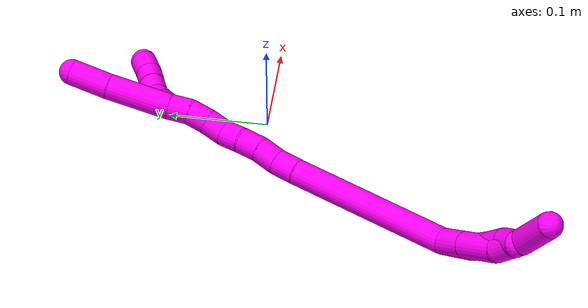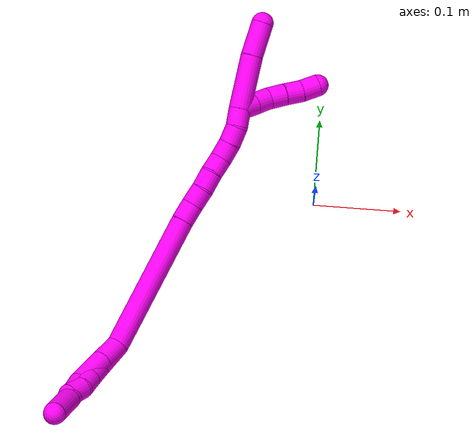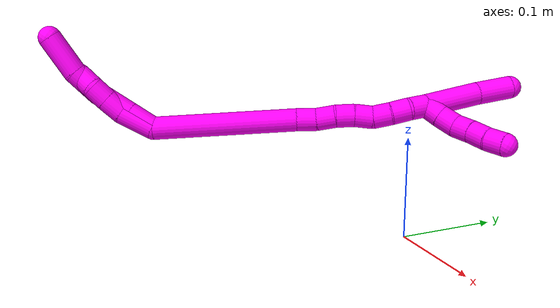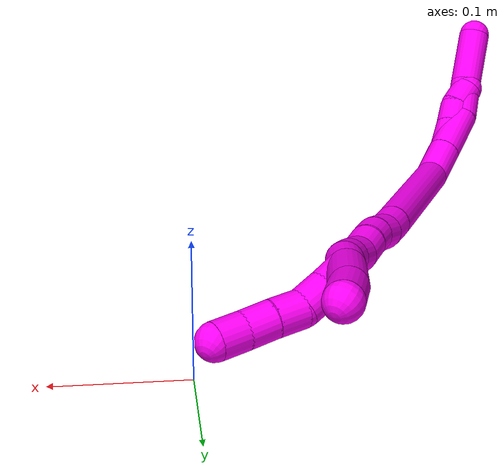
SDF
<sdf version="1.7">
 <world name="default">
  <model name="10">
   <static>0</static>
   <link name="10">
    <collision name="collision-cylinder-e_1_2_8">
     <pose>0.000612 0.000194 0.015052 -0.012898 0.040608 -0.000262</pose>
     <geometry><cylinder><radius>0.0125</radius><length>0.030132</length></cylinder></geometry>
     <surface>
      <friction><ode><mu>1.16</mu><mu2>1.16</mu2><slip1>0</slip1><slip2>0</slip2></ode></friction>
      <contact><ode><kp>1e+06</kp><kd>1</kd><max_vel>0</max_vel><min_depth>0.001</min_depth></ode></contact>
     </surface>
    </collision>
    <visual name="visual-cylinder-e_1_2_8">
     <pose>0.000612 0.000194 0.015052 -0.012898 0.040608 -0.000262</pose>
     <geometry><cylinder><radius>0.0125</radius><length>0.030132</length></cylinder></geometry>
     <material><ambient>1 0 0.964706 1</ambient></material>
    </visual>
    <collision name="collision-cylinder-e_2_8_9">
     <pose>0.002144 0.000601 0.050875 -0.01025 0.04428 -0.000227</pose>
     <geometry><cylinder><radius>0.0125</radius><length>0.041584</length></cylinder></geometry>
     <surface>
      <friction><ode><mu>1.16</mu><mu2>1.16</mu2><slip1>0</slip1><slip2>0</slip2></ode></friction>
      <contact><ode><kp>1e+06</kp><kd>1</kd><max_vel>0</max_vel><min_depth>0.001</min_depth></ode></contact>
     </surface>
    </collision>
    <visual name="visual-cylinder-e_2_8_9">
     <pose>0.002144 0.000601 0.050875 -0.01025 0.04428 -0.000227</pose>
     <geometry><cylinder><radius>0.0125</radius><length>0.041584</length></cylinder></geometry>
     <material><ambient>1 0 0.964706 1</ambient></material>
    </visual>
    <collision name="collision-cylinder-e_3_9_10">
     <pose>0.00857 0.003198 0.087179 -0.152307 0.336991 -0.025957</pose>
     <geometry><cylinder><radius>0.0125</radius><length>0.033305</length></cylinder></geometry>
     <surface>
      <friction><ode><mu>1.16</mu><mu2>1.16</mu2><slip1>0</slip1><slip2>0</slip2></ode></friction>
      <contact><ode><kp>1e+06</kp><kd>1</kd><max_vel>0</max_vel><min_depth>0.001</min_depth></ode></contact>
     </surface>
    </collision>
    <visual name="visual-cylinder-e_3_9_10">
     <pose>0.00857 0.003198 0.087179 -0.152307 0.336991 -0.025957</pose>
     <geometry><cylinder><radius>0.0125</radius><length>0.033305</length></cylinder></geometry>
     <material><ambient>1 0 0.964706 1</ambient></material>
    </visual>
    <collision name="collision-cylinder-e_4_10_6">
     <pose>0.021646 0.013328 0.122423 -0.374392 0.343306 -0.06565</pose>
     <geometry><cylinder><radius>0.0125</radius><length>0.04498</length></cylinder></geometry>
     <surface>
      <friction><ode><mu>1.16</mu><mu2>1.16</mu2><slip1>0</slip1><slip2>0</slip2></ode></friction>
      <contact><ode><kp>1e+06</kp><kd>1</kd><max_vel>0</max_vel><min_depth>0.001</min_depth></ode></contact>
     </surface>
    </collision>
    <visual name="visual-cylinder-e_4_10_6">
     <pose>0.021646 0.013328 0.122423 -0.374392 0.343306 -0.06565</pose>
     <geometry><cylinder><radius>0.0125</radius><length>0.04498</length></cylinder></geometry>
     <material><ambient>1 0 0.964706 1</ambient></material>
    </visual>
    <collision name="collision-cylinder-e_1_2_11">
     <pose>0.000848 -0.001673 0.01886 0.088494 0.044745 0.001981</pose>
     <geometry><cylinder><radius>0.0125</radius><length>0.037906</length></cylinder></geometry>
     <surface>
      <friction><ode><mu>1.16</mu><mu2>1.16</mu2><slip1>0</slip1><slip2>0</slip2></ode></friction>
      <contact><ode><kp>1e+06</kp><kd>1</kd><max_vel>0</max_vel><min_depth>0.001</min_depth></ode></contact>
     </surface>
    </collision>
    <visual name="visual-cylinder-e_1_2_11">
     <pose>0.000848 -0.001673 0.01886 0.088494 0.044745 0.001981</pose>
     <geometry><cylinder><radius>0.0125</radius><length>0.037906</length></cylinder></geometry>
     <material><ambient>1 0 0.964706 1</ambient></material>
    </visual>
    <collision name="collision-cylinder-e_2_11_12">
     <pose>0.004064 -0.002182 0.048284 -0.109798 0.219244 -0.012097</pose>
     <geometry><cylinder><radius>0.0125</radius><length>0.021776</length></cylinder></geometry>
     <surface>
      <friction><ode><mu>1.16</mu><mu2>1.16</mu2><slip1>0</slip1><slip2>0</slip2></ode></friction>
      <contact><ode><kp>1e+06</kp><kd>1</kd><max_vel>0</max_vel><min_depth>0.001</min_depth></ode></contact>
     </surface>
    </collision>
    <visual name="visual-cylinder-e_2_11_12">
     <pose>0.004064 -0.002182 0.048284 -0.109798 0.219244 -0.012097</pose>
     <geometry><cylinder><radius>0.0125</radius><length>0.021776</length></cylinder></geometry>
     <material><ambient>1 0 0.964706 1</ambient></material>
    </visual>
    <collision name="collision-cylinder-e_3_12_13">
     <pose>0.009138 0.000486 0.068378 -0.156508 0.27343 -0.021575</pose>
     <geometry><cylinder><radius>0.0125</radius><length>0.020041</length></cylinder></geometry>
     <surface>
      <friction><ode><mu>1.16</mu><mu2>1.16</mu2><slip1>0</slip1><slip2>0</slip2></ode></friction>
      <contact><ode><kp>1e+06</kp><kd>1</kd><max_vel>0</max_vel><min_depth>0.001</min_depth></ode></contact>
     </surface>
    </collision>
    <visual name="visual-cylinder-e_3_12_13">
     <pose>0.009138 0.000486 0.068378 -0.156508 0.27343 -0.021575</pose>
     <geometry><cylinder><radius>0.0125</radius><length>0.020041</length></cylinder></geometry>
     <material><ambient>1 0 0.964706 1</ambient></material>
    </visual>
    <collision name="collision-cylinder-e_4_13_5">
     <pose>0.011345 0.004101 0.087811 -0.210034 -0.04921 0.005188</pose>
     <geometry><cylinder><radius>0.0125</radius><length>0.020276</length></cylinder></geometry>
     <surface>
      <friction><ode><mu>1.16</mu><mu2>1.16</mu2><slip1>0</slip1><slip2>0</slip2></ode></friction>
      <contact><ode><kp>1e+06</kp><kd>1</kd><max_vel>0</max_vel><min_depth>0.001</min_depth></ode></contact>
     </surface>
    </collision>
    <visual name="visual-cylinder-e_4_13_5">
     <pose>0.011345 0.004101 0.087811 -0.210034 -0.04921 0.005188</pose>
     <geometry><cylinder><radius>0.0125</radius><length>0.020276</length></cylinder></geometry>
     <material><ambient>1 0 0.964706 1</ambient></material>
    </visual>
    <collision name="collision-cylinder-e_1_2_14">
     <pose>0.004957 0.044058 -0.064333 -2.54111 0.063484 -0.204407</pose>
     <geometry><cylinder><radius>0.0125</radius><length>0.156262</length></cylinder></geometry>
     <surface>
      <friction><ode><mu>1.16</mu><mu2>1.16</mu2><slip1>0</slip1><slip2>0</slip2></ode></friction>
      <contact><ode><kp>1e+06</kp><kd>1</kd><max_vel>0</max_vel><min_depth>0.001</min_depth></ode></contact>
     </surface>
    </collision>
    <visual name="visual-cylinder-e_1_2_14">
     <pose>0.004957 0.044058 -0.064333 -2.54111 0.063484 -0.204407</pose>
     <geometry><cylinder><radius>0.0125</radius><length>0.156262</length></cylinder></geometry>
     <material><ambient>1 0 0.964706 1</ambient></material>
    </visual>
    <collision name="collision-cylinder-e_2_14_15">
     <pose>0.01103 0.093785 -0.137993 -2.59551 0.10191 -0.360285</pose>
     <geometry><cylinder><radius>0.0125</radius><length>0.021942</length></cylinder></geometry>
     <surface>
      <friction><ode><mu>1.16</mu><mu2>1.16</mu2><slip1>0</slip1><slip2>0</slip2></ode></friction>
      <contact><ode><kp>1e+06</kp><kd>1</kd><max_vel>0</max_vel><min_depth>0.001</min_depth></ode></contact>
     </surface>
    </collision>
    <visual name="visual-cylinder-e_2_14_15">
     <pose>0.01103 0.093785 -0.137993 -2.59551 0.10191 -0.360285</pose>
     <geometry><cylinder><radius>0.0125</radius><length>0.021942</length></cylinder></geometry>
     <material><ambient>1 0 0.964706 1</ambient></material>
    </visual>
    <collision name="collision-cylinder-e_3_15_16">
     <pose>0.014554 0.105781 -0.155295 -2.4708 0.232229 -0.645832</pose>
     <geometry><cylinder><radius>0.0125</radius><length>0.020923</length></cylinder></geometry>
     <surface>
      <friction><ode><mu>1.16</mu><mu2>1.16</mu2><slip1>0</slip1><slip2>0</slip2></ode></friction>
      <contact><ode><kp>1e+06</kp><kd>1</kd><max_vel>0</max_vel><min_depth>0.001</min_depth></ode></contact>
     </surface>
    </collision>
    <visual name="visual-cylinder-e_3_15_16">
     <pose>0.014554 0.105781 -0.155295 -2.4708 0.232229 -0.645832</pose>
     <geometry><cylinder><radius>0.0125</radius><length>0.020923</length></cylinder></geometry>
     <material><ambient>1 0 0.964706 1</ambient></material>
    </visual>
    <collision name="collision-cylinder-e_4_16_17">
     <pose>0.017755 0.117662 -0.171668 -2.55737 0.078662 -0.260242</pose>
     <geometry><cylinder><radius>0.0125</radius><length>0.020197</length></cylinder></geometry>
     <surface>
      <friction><ode><mu>1.16</mu><mu2>1.16</mu2><slip1>0</slip1><slip2>0</slip2></ode></friction>
      <contact><ode><kp>1e+06</kp><kd>1</kd><max_vel>0</max_vel><min_depth>0.001</min_depth></ode></contact>
     </surface>
    </collision>
    <visual name="visual-cylinder-e_4_16_17">
     <pose>0.017755 0.117662 -0.171668 -2.55737 0.078662 -0.260242</pose>
     <geometry><cylinder><radius>0.0125</radius><length>0.020197</length></cylinder></geometry>
     <material><ambient>1 0 0.964706 1</ambient></material>
    </visual>
    <collision name="collision-cylinder-e_5_17_18">
     <pose>0.019108 0.127364 -0.189194 -2.71504 0.055783 -0.256227</pose>
     <geometry><cylinder><radius>0.0125</radius><length>0.020086</length></cylinder></geometry>
     <surface>
      <friction><ode><mu>1.16</mu><mu2>1.16</mu2><slip1>0</slip1><slip2>0</slip2></ode></friction>
      <contact><ode><kp>1e+06</kp><kd>1</kd><max_vel>0</max_vel><min_depth>0.001</min_depth></ode></contact>
     </surface>
    </collision>
    <visual name="visual-cylinder-e_5_17_18">
     <pose>0.019108 0.127364 -0.189194 -2.71504 0.055783 -0.256227</pose>
     <geometry><cylinder><radius>0.0125</radius><length>0.020086</length></cylinder></geometry>
     <material><ambient>1 0 0.964706 1</ambient></material>
    </visual>
    <collision name="collision-cylinder-e_6_18_19">
     <pose>0.021658 0.137971 -0.205755 -2.42617 0.199437 -0.523062</pose>
     <geometry><cylinder><radius>0.0125</radius><length>0.020089</length></cylinder></geometry>
     <surface>
      <friction><ode><mu>1.16</mu><mu2>1.16</mu2><slip1>0</slip1><slip2>0</slip2></ode></friction>
      <contact><ode><kp>1e+06</kp><kd>1</kd><max_vel>0</max_vel><min_depth>0.001</min_depth></ode></contact>
     </surface>
    </collision>
    <visual name="visual-cylinder-e_6_18_19">
     <pose>0.021658 0.137971 -0.205755 -2.42617 0.199437 -0.523062</pose>
     <geometry><cylinder><radius>0.0125</radius><length>0.020089</length></cylinder></geometry>
     <material><ambient>1 0 0.964706 1</ambient></material>
    </visual>
    <collision name="collision-cylinder-e_7_19_20">
     <pose>0.024567 0.151555 -0.220225 -2.34997 0.091426 -0.218077</pose>
     <geometry><cylinder><radius>0.0125</radius><length>0.020116</length></cylinder></geometry>
     <surface>
      <friction><ode><mu>1.16</mu><mu2>1.16</mu2><slip1>0</slip1><slip2>0</slip2></ode></friction>
      <contact><ode><kp>1e+06</kp><kd>1</kd><max_vel>0</max_vel><min_depth>0.001</min_depth></ode></contact>
     </surface>
    </collision>
    <visual name="visual-cylinder-e_7_19_20">
     <pose>0.024567 0.151555 -0.220225 -2.34997 0.091426 -0.218077</pose>
     <geometry><cylinder><radius>0.0125</radius><length>0.020116</length></cylinder></geometry>
     <material><ambient>1 0 0.964706 1</ambient></material>
    </visual>
    <collision name="collision-cylinder-e_8_20_1">
     <pose>0.023717 0.165832 -0.234307 -2.34869 -0.174378 0.4117</pose>
     <geometry><cylinder><radius>0.0125</radius><length>0.020384</length></cylinder></geometry>
     <surface>
      <friction><ode><mu>1.16</mu><mu2>1.16</mu2><slip1>0</slip1><slip2>0</slip2></ode></friction>
      <contact><ode><kp>1e+06</kp><kd>1</kd><max_vel>0</max_vel><min_depth>0.001</min_depth></ode></contact>
     </surface>
    </collision>
    <visual name="visual-cylinder-e_8_20_1">
     <pose>0.023717 0.165832 -0.234307 -2.34869 -0.174378 0.4117</pose>
     <geometry><cylinder><radius>0.0125</radius><length>0.020384</length></cylinder></geometry>
     <material><ambient>1 0 0.964706 1</ambient></material>
    </visual>
    <collision name="collision-cylinder-e_1_1_21">
     <pose>0.024466 0.171047 -0.250833 2.94027 0.254492 1.80503</pose>
     <geometry><cylinder><radius>0.0125</radius><length>0.02</length></cylinder></geometry>
     <surface>
      <friction><ode><mu>1.16</mu><mu2>1.16</mu2><slip1>0</slip1><slip2>0</slip2></ode></friction>
      <contact><ode><kp>1e+06</kp><kd>1</kd><max_vel>0</max_vel><min_depth>0.001</min_depth></ode></contact>
     </surface>
    </collision>
    <visual name="visual-cylinder-e_1_1_21">
     <pose>0.024466 0.171047 -0.250833 2.94027 0.254492 1.80503</pose>
     <geometry><cylinder><radius>0.0125</radius><length>0.02</length></cylinder></geometry>
     <material><ambient>1 0 0.964706 1</ambient></material>
    </visual>
    <collision name="collision-cylinder-e_2_21_22">
     <pose>0.029753 0.167765 -0.269829 3.00094 0.280653 2.21639</pose>
     <geometry><cylinder><radius>0.0125</radius><length>0.02</length></cylinder></geometry>
     <surface>
      <friction><ode><mu>1.16</mu><mu2>1.16</mu2><slip1>0</slip1><slip2>0</slip2></ode></friction>
      <contact><ode><kp>1e+06</kp><kd>1</kd><max_vel>0</max_vel><min_depth>0.001</min_depth></ode></contact>
     </surface>
    </collision>
    <visual name="visual-cylinder-e_2_21_22">
     <pose>0.029753 0.167765 -0.269829 3.00094 0.280653 2.21639</pose>
     <geometry><cylinder><radius>0.0125</radius><length>0.02</length></cylinder></geometry>
     <material><ambient>1 0 0.964706 1</ambient></material>
    </visual>
    <collision name="collision-cylinder-e_3_22_23">
     <pose>0.038351 0.165836 -0.287449 3.06994 0.622148 2.91955</pose>
     <geometry><cylinder><radius>0.0125</radius><length>0.02</length></cylinder></geometry>
     <surface>
      <friction><ode><mu>1.16</mu><mu2>1.16</mu2><slip1>0</slip1><slip2>0</slip2></ode></friction>
      <contact><ode><kp>1e+06</kp><kd>1</kd><max_vel>0</max_vel><min_depth>0.001</min_depth></ode></contact>
     </surface>
    </collision>
    <visual name="visual-cylinder-e_3_22_23">
     <pose>0.038351 0.165836 -0.287449 3.06994 0.622148 2.91955</pose>
     <geometry><cylinder><radius>0.0125</radius><length>0.02</length></cylinder></geometry>
     <material><ambient>1 0 0.964706 1</ambient></material>
    </visual>
    <collision name="collision-cylinder-e_4_23_24">
     <pose>0.049781 0.164087 -0.303755 3.00015 0.594711 2.68725</pose>
     <geometry><cylinder><radius>0.0125</radius><length>0.02</length></cylinder></geometry>
     <surface>
      <friction><ode><mu>1.16</mu><mu2>1.16</mu2><slip1>0</slip1><slip2>0</slip2></ode></friction>
      <contact><ode><kp>1e+06</kp><kd>1</kd><max_vel>0</max_vel><min_depth>0.001</min_depth></ode></contact>
     </surface>
    </collision>
    <visual name="visual-cylinder-e_4_23_24">
     <pose>0.049781 0.164087 -0.303755 3.00015 0.594711 2.68725</pose>
     <geometry><cylinder><radius>0.0125</radius><length>0.02</length></cylinder></geometry>
     <material><ambient>1 0 0.964706 1</ambient></material>
    </visual>
    <collision name="collision-cylinder-e_5_24_4">
     <pose>0.060819 0.163146 -0.320346 -3.11457 0.574577 -3.05021</pose>
     <geometry><cylinder><radius>0.0125</radius><length>0.02</length></cylinder></geometry>
     <surface>
      <friction><ode><mu>1.16</mu><mu2>1.16</mu2><slip1>0</slip1><slip2>0</slip2></ode></friction>
      <contact><ode><kp>1e+06</kp><kd>1</kd><max_vel>0</max_vel><min_depth>0.001</min_depth></ode></contact>
     </surface>
    </collision>
    <visual name="visual-cylinder-e_5_24_4">
     <pose>0.060819 0.163146 -0.320346 -3.11457 0.574577 -3.05021</pose>
     <geometry><cylinder><radius>0.0125</radius><length>0.02</length></cylinder></geometry>
     <material><ambient>1 0 0.964706 1</ambient></material>
    </visual>
    <collision name="collision-cylinder-e_1_1_25">
     <pose>0.018886 0.195211 -0.26213 -2.3225 -0.100318 0.230267</pose>
     <geometry><cylinder><radius>0.0125</radius><length>0.061165</length></cylinder></geometry>
     <surface>
      <friction><ode><mu>1.16</mu><mu2>1.16</mu2><slip1>0</slip1><slip2>0</slip2></ode></friction>
      <contact><ode><kp>1e+06</kp><kd>1</kd><max_vel>0</max_vel><min_depth>0.001</min_depth></ode></contact>
     </surface>
    </collision>
    <visual name="visual-cylinder-e_1_1_25">
     <pose>0.018886 0.195211 -0.26213 -2.3225 -0.100318 0.230267</pose>
     <geometry><cylinder><radius>0.0125</radius><length>0.061165</length></cylinder></geometry>
     <material><ambient>1 0 0.964706 1</ambient></material>
    </visual>
    <collision name="collision-cylinder-e_2_25_3">
     <pose>0.015171 0.230766 -0.297017 -2.3847 -0.033549 0.084335</pose>
     <geometry><cylinder><radius>0.0125</radius><length>0.038835</length></cylinder></geometry>
     <surface>
      <friction><ode><mu>1.16</mu><mu2>1.16</mu2><slip1>0</slip1><slip2>0</slip2></ode></friction>
      <contact><ode><kp>1e+06</kp><kd>1</kd><max_vel>0</max_vel><min_depth>0.001</min_depth></ode></contact>
     </surface>
    </collision>
    <visual name="visual-cylinder-e_2_25_3">
     <pose>0.015171 0.230766 -0.297017 -2.3847 -0.033549 0.084335</pose>
     <geometry><cylinder><radius>0.0125</radius><length>0.038835</length></cylinder></geometry>
     <material><ambient>1 0 0.964706 1</ambient></material>
    </visual>
    <collision name="collision-sphere-3">
     <pose>0.01452 0.244092 -0.311125 0 -0 0</pose>
     <geometry><sphere><radius>0.0125</radius></sphere></geometry>
     <surface>
      <friction><ode><mu>1.16</mu><mu2>1.16</mu2><slip1>0</slip1><slip2>0</slip2></ode></friction>
      <contact><ode><kp>1e+06</kp><kd>1</kd><max_vel>0</max_vel><min_depth>0.001</min_depth></ode></contact>
     </surface>
    </collision>
    <visual name="visual-sphere-3">
     <pose>0.01452 0.244092 -0.311125 0 -0 0</pose>
     <geometry><sphere><radius>0.0125</radius></sphere></geometry>
     <material><ambient>1 0 0.964706 1</ambient></material>
    </visual>
    <collision name="collision-sphere-25">
     <pose>0.015823 0.217441 -0.282909 0 -0 0</pose>
     <geometry><sphere><radius>0.0125</radius></sphere></geometry>
     <surface>
      <friction><ode><mu>1.16</mu><mu2>1.16</mu2><slip1>0</slip1><slip2>0</slip2></ode></friction>
      <contact><ode><kp>1e+06</kp><kd>1</kd><max_vel>0</max_vel><min_depth>0.001</min_depth></ode></contact>
     </surface>
    </collision>
    <visual name="visual-sphere-25">
     <pose>0.015823 0.217441 -0.282909 0 -0 0</pose>
     <geometry><sphere><radius>0.0125</radius></sphere></geometry>
     <material><ambient>1 0 0.964706 1</ambient></material>
    </visual>
    <collision name="collision-sphere-4">
     <pose>0.066254 0.163373 -0.328737 0 -0 0</pose>
     <geometry><sphere><radius>0.0125</radius></sphere></geometry>
     <surface>
      <friction><ode><mu>1.16</mu><mu2>1.16</mu2><slip1>0</slip1><slip2>0</slip2></ode></friction>
      <contact><ode><kp>1e+06</kp><kd>1</kd><max_vel>0</max_vel><min_depth>0.001</min_depth></ode></contact>
     </surface>
    </collision>
    <visual name="visual-sphere-4">
     <pose>0.066254 0.163373 -0.328737 0 -0 0</pose>
     <geometry><sphere><radius>0.0125</radius></sphere></geometry>
     <material><ambient>1 0 0.964706 1</ambient></material>
    </visual>
    <collision name="collision-sphere-24">
     <pose>0.055384 0.162919 -0.311955 0 -0 0</pose>
     <geometry><sphere><radius>0.0125</radius></sphere></geometry>
     <surface>
      <friction><ode><mu>1.16</mu><mu2>1.16</mu2><slip1>0</slip1><slip2>0</slip2></ode></friction>
      <contact><ode><kp>1e+06</kp><kd>1</kd><max_vel>0</max_vel><min_depth>0.001</min_depth></ode></contact>
     </surface>
    </collision>
    <visual name="visual-sphere-24">
     <pose>0.055384 0.162919 -0.311955 0 -0 0</pose>
     <geometry><sphere><radius>0.0125</radius></sphere></geometry>
     <material><ambient>1 0 0.964706 1</ambient></material>
    </visual>
    <collision name="collision-sphere-23">
     <pose>0.044179 0.165254 -0.295554 0 -0 0</pose>
     <geometry><sphere><radius>0.0125</radius></sphere></geometry>
     <surface>
      <friction><ode><mu>1.16</mu><mu2>1.16</mu2><slip1>0</slip1><slip2>0</slip2></ode></friction>
      <contact><ode><kp>1e+06</kp><kd>1</kd><max_vel>0</max_vel><min_depth>0.001</min_depth></ode></contact>
     </surface>
    </collision>
    <visual name="visual-sphere-23">
     <pose>0.044179 0.165254 -0.295554 0 -0 0</pose>
     <geometry><sphere><radius>0.0125</radius></sphere></geometry>
     <material><ambient>1 0 0.964706 1</ambient></material>
    </visual>
    <collision name="collision-sphere-22">
     <pose>0.032523 0.166418 -0.279343 0 -0 0</pose>
     <geometry><sphere><radius>0.0125</radius></sphere></geometry>
     <surface>
      <friction><ode><mu>1.16</mu><mu2>1.16</mu2><slip1>0</slip1><slip2>0</slip2></ode></friction>
      <contact><ode><kp>1e+06</kp><kd>1</kd><max_vel>0</max_vel><min_depth>0.001</min_depth></ode></contact>
     </surface>
    </collision>
    <visual name="visual-sphere-22">
     <pose>0.032523 0.166418 -0.279343 0 -0 0</pose>
     <geometry><sphere><radius>0.0125</radius></sphere></geometry>
     <material><ambient>1 0 0.964706 1</ambient></material>
    </visual>
    <collision name="collision-sphere-21">
     <pose>0.026983 0.169112 -0.260316 0 -0 0</pose>
     <geometry><sphere><radius>0.0125</radius></sphere></geometry>
     <surface>
      <friction><ode><mu>1.16</mu><mu2>1.16</mu2><slip1>0</slip1><slip2>0</slip2></ode></friction>
      <contact><ode><kp>1e+06</kp><kd>1</kd><max_vel>0</max_vel><min_depth>0.001</min_depth></ode></contact>
     </surface>
    </collision>
    <visual name="visual-sphere-21">
     <pose>0.026983 0.169112 -0.260316 0 -0 0</pose>
     <geometry><sphere><radius>0.0125</radius></sphere></geometry>
     <material><ambient>1 0 0.964706 1</ambient></material>
    </visual>
    <collision name="collision-sphere-1">
     <pose>0.021948 0.172982 -0.241351 0 -0 0</pose>
     <geometry><sphere><radius>0.0125</radius></sphere></geometry>
     <surface>
      <friction><ode><mu>1.16</mu><mu2>1.16</mu2><slip1>0</slip1><slip2>0</slip2></ode></friction>
      <contact><ode><kp>1e+06</kp><kd>1</kd><max_vel>0</max_vel><min_depth>0.001</min_depth></ode></contact>
     </surface>
    </collision>
    <visual name="visual-sphere-1">
     <pose>0.021948 0.172982 -0.241351 0 -0 0</pose>
     <geometry><sphere><radius>0.0125</radius></sphere></geometry>
     <material><ambient>1 0 0.964706 1</ambient></material>
    </visual>
    <collision name="collision-sphere-11">
     <pose>0.001696 -0.003347 0.03772 0 -0 0</pose>
     <geometry><sphere><radius>0.0125</radius></sphere></geometry>
     <surface>
      <friction><ode><mu>1.16</mu><mu2>1.16</mu2><slip1>0</slip1><slip2>0</slip2></ode></friction>
      <contact><ode><kp>1e+06</kp><kd>1</kd><max_vel>0</max_vel><min_depth>0.001</min_depth></ode></contact>
     </surface>
    </collision>
    <visual name="visual-sphere-11">
     <pose>0.001696 -0.003347 0.03772 0 -0 0</pose>
     <geometry><sphere><radius>0.0125</radius></sphere></geometry>
     <material><ambient>1 0 0.964706 1</ambient></material>
    </visual>
    <collision name="collision-sphere-6">
     <pose>0.029216 0.021072 0.142134 0 -0 0</pose>
     <geometry><sphere><radius>0.0125</radius></sphere></geometry>
     <surface>
      <friction><ode><mu>1.16</mu><mu2>1.16</mu2><slip1>0</slip1><slip2>0</slip2></ode></friction>
      <contact><ode><kp>1e+06</kp><kd>1</kd><max_vel>0</max_vel><min_depth>0.001</min_depth></ode></contact>
     </surface>
    </collision>
    <visual name="visual-sphere-6">
     <pose>0.029216 0.021072 0.142134 0 -0 0</pose>
     <geometry><sphere><radius>0.0125</radius></sphere></geometry>
     <material><ambient>1 0 0.964706 1</ambient></material>
    </visual>
    <collision name="collision-sphere-10">
     <pose>0.014076 0.005583 0.102713 0 -0 0</pose>
     <geometry><sphere><radius>0.0125</radius></sphere></geometry>
     <surface>
      <friction><ode><mu>1.16</mu><mu2>1.16</mu2><slip1>0</slip1><slip2>0</slip2></ode></friction>
      <contact><ode><kp>1e+06</kp><kd>1</kd><max_vel>0</max_vel><min_depth>0.001</min_depth></ode></contact>
     </surface>
    </collision>
    <visual name="visual-sphere-10">
     <pose>0.014076 0.005583 0.102713 0 -0 0</pose>
     <geometry><sphere><radius>0.0125</radius></sphere></geometry>
     <material><ambient>1 0 0.964706 1</ambient></material>
    </visual>
    <collision name="collision-sphere-9">
     <pose>0.003064 0.000814 0.071645 0 -0 0</pose>
     <geometry><sphere><radius>0.0125</radius></sphere></geometry>
     <surface>
      <friction><ode><mu>1.16</mu><mu2>1.16</mu2><slip1>0</slip1><slip2>0</slip2></ode></friction>
      <contact><ode><kp>1e+06</kp><kd>1</kd><max_vel>0</max_vel><min_depth>0.001</min_depth></ode></contact>
     </surface>
    </collision>
    <visual name="visual-sphere-9">
     <pose>0.003064 0.000814 0.071645 0 -0 0</pose>
     <geometry><sphere><radius>0.0125</radius></sphere></geometry>
     <material><ambient>1 0 0.964706 1</ambient></material>
    </visual>
    <collision name="collision-sphere-2">
     <geometry><sphere><radius>0.0125</radius></sphere></geometry>
     <surface>
      <friction><ode><mu>1.16</mu><mu2>1.16</mu2><slip1>0</slip1><slip2>0</slip2></ode></friction>
      <contact><ode><kp>1e+06</kp><kd>1</kd><max_vel>0</max_vel><min_depth>0.001</min_depth></ode></contact>
     </surface>
    </collision>
    <visual name="visual-sphere-2">
     <geometry><sphere><radius>0.0125</radius></sphere></geometry>
     <material><ambient>1 0 0.964706 1</ambient></material>
    </visual>
    <collision name="collision-sphere-19">
     <pose>0.023648 0.144429 -0.213186 0 -0 0</pose>
     <geometry><sphere><radius>0.0125</radius></sphere></geometry>
     <surface>
      <friction><ode><mu>1.16</mu><mu2>1.16</mu2><slip1>0</slip1><slip2>0</slip2></ode></friction>
      <contact><ode><kp>1e+06</kp><kd>1</kd><max_vel>0</max_vel><min_depth>0.001</min_depth></ode></contact>
     </surface>
    </collision>
    <visual name="visual-sphere-19">
     <pose>0.023648 0.144429 -0.213186 0 -0 0</pose>
     <geometry><sphere><radius>0.0125</radius></sphere></geometry>
     <material><ambient>1 0 0.964706 1</ambient></material>
    </visual>
    <collision name="collision-sphere-8">
     <pose>0.001223 0.000388 0.030104 0 -0 0</pose>
     <geometry><sphere><radius>0.0125</radius></sphere></geometry>
     <surface>
      <friction><ode><mu>1.16</mu><mu2>1.16</mu2><slip1>0</slip1><slip2>0</slip2></ode></friction>
      <contact><ode><kp>1e+06</kp><kd>1</kd><max_vel>0</max_vel><min_depth>0.001</min_depth></ode></contact>
     </surface>
    </collision>
    <visual name="visual-sphere-8">
     <pose>0.001223 0.000388 0.030104 0 -0 0</pose>
     <geometry><sphere><radius>0.0125</radius></sphere></geometry>
     <material><ambient>1 0 0.964706 1</ambient></material>
    </visual>
    <collision name="collision-sphere-12">
     <pose>0.006432 -0.001018 0.058847 0 -0 0</pose>
     <geometry><sphere><radius>0.0125</radius></sphere></geometry>
     <surface>
      <friction><ode><mu>1.16</mu><mu2>1.16</mu2><slip1>0</slip1><slip2>0</slip2></ode></friction>
      <contact><ode><kp>1e+06</kp><kd>1</kd><max_vel>0</max_vel><min_depth>0.001</min_depth></ode></contact>
     </surface>
    </collision>
    <visual name="visual-sphere-12">
     <pose>0.006432 -0.001018 0.058847 0 -0 0</pose>
     <geometry><sphere><radius>0.0125</radius></sphere></geometry>
     <material><ambient>1 0 0.964706 1</ambient></material>
    </visual>
    <collision name="collision-sphere-13">
     <pose>0.011844 0.00199 0.077908 0 -0 0</pose>
     <geometry><sphere><radius>0.0125</radius></sphere></geometry>
     <surface>
      <friction><ode><mu>1.16</mu><mu2>1.16</mu2><slip1>0</slip1><slip2>0</slip2></ode></friction>
      <contact><ode><kp>1e+06</kp><kd>1</kd><max_vel>0</max_vel><min_depth>0.001</min_depth></ode></contact>
     </surface>
    </collision>
    <visual name="visual-sphere-13">
     <pose>0.011844 0.00199 0.077908 0 -0 0</pose>
     <geometry><sphere><radius>0.0125</radius></sphere></geometry>
     <material><ambient>1 0 0.964706 1</ambient></material>
    </visual>
    <collision name="collision-sphere-5">
     <pose>0.010846 0.006212 0.097715 0 -0 0</pose>
     <geometry><sphere><radius>0.0125</radius></sphere></geometry>
     <surface>
      <friction><ode><mu>1.16</mu><mu2>1.16</mu2><slip1>0</slip1><slip2>0</slip2></ode></friction>
      <contact><ode><kp>1e+06</kp><kd>1</kd><max_vel>0</max_vel><min_depth>0.001</min_depth></ode></contact>
     </surface>
    </collision>
    <visual name="visual-sphere-5">
     <pose>0.010846 0.006212 0.097715 0 -0 0</pose>
     <geometry><sphere><radius>0.0125</radius></sphere></geometry>
     <material><ambient>1 0 0.964706 1</ambient></material>
    </visual>
    <collision name="collision-sphere-14">
     <pose>0.009914 0.088116 -0.128666 0 -0 0</pose>
     <geometry><sphere><radius>0.0125</radius></sphere></geometry>
     <surface>
      <friction><ode><mu>1.16</mu><mu2>1.16</mu2><slip1>0</slip1><slip2>0</slip2></ode></friction>
      <contact><ode><kp>1e+06</kp><kd>1</kd><max_vel>0</max_vel><min_depth>0.001</min_depth></ode></contact>
     </surface>
    </collision>
    <visual name="visual-sphere-14">
     <pose>0.009914 0.088116 -0.128666 0 -0 0</pose>
     <geometry><sphere><radius>0.0125</radius></sphere></geometry>
     <material><ambient>1 0 0.964706 1</ambient></material>
    </visual>
    <collision name="collision-sphere-15">
     <pose>0.012146 0.099453 -0.14732 0 -0 0</pose>
     <geometry><sphere><radius>0.0125</radius></sphere></geometry>
     <surface>
      <friction><ode><mu>1.16</mu><mu2>1.16</mu2><slip1>0</slip1><slip2>0</slip2></ode></friction>
      <contact><ode><kp>1e+06</kp><kd>1</kd><max_vel>0</max_vel><min_depth>0.001</min_depth></ode></contact>
     </surface>
    </collision>
    <visual name="visual-sphere-15">
     <pose>0.012146 0.099453 -0.14732 0 -0 0</pose>
     <geometry><sphere><radius>0.0125</radius></sphere></geometry>
     <material><ambient>1 0 0.964706 1</ambient></material>
    </visual>
    <collision name="collision-sphere-16">
     <pose>0.016961 0.11211 -0.16327 0 -0 0</pose>
     <geometry><sphere><radius>0.0125</radius></sphere></geometry>
     <surface>
      <friction><ode><mu>1.16</mu><mu2>1.16</mu2><slip1>0</slip1><slip2>0</slip2></ode></friction>
      <contact><ode><kp>1e+06</kp><kd>1</kd><max_vel>0</max_vel><min_depth>0.001</min_depth></ode></contact>
     </surface>
    </collision>
    <visual name="visual-sphere-16">
     <pose>0.016961 0.11211 -0.16327 0 -0 0</pose>
     <geometry><sphere><radius>0.0125</radius></sphere></geometry>
     <material><ambient>1 0 0.964706 1</ambient></material>
    </visual>
    <collision name="collision-sphere-17">
     <pose>0.018548 0.123215 -0.180065 0 -0 0</pose>
     <geometry><sphere><radius>0.0125</radius></sphere></geometry>
     <surface>
      <friction><ode><mu>1.16</mu><mu2>1.16</mu2><slip1>0</slip1><slip2>0</slip2></ode></friction>
      <contact><ode><kp>1e+06</kp><kd>1</kd><max_vel>0</max_vel><min_depth>0.001</min_depth></ode></contact>
     </surface>
    </collision>
    <visual name="visual-sphere-17">
     <pose>0.018548 0.123215 -0.180065 0 -0 0</pose>
     <geometry><sphere><radius>0.0125</radius></sphere></geometry>
     <material><ambient>1 0 0.964706 1</ambient></material>
    </visual>
    <collision name="collision-sphere-18">
     <pose>0.019668 0.131512 -0.198323 0 -0 0</pose>
     <geometry><sphere><radius>0.0125</radius></sphere></geometry>
     <surface>
      <friction><ode><mu>1.16</mu><mu2>1.16</mu2><slip1>0</slip1><slip2>0</slip2></ode></friction>
      <contact><ode><kp>1e+06</kp><kd>1</kd><max_vel>0</max_vel><min_depth>0.001</min_depth></ode></contact>
     </surface>
    </collision>
    <visual name="visual-sphere-18">
     <pose>0.019668 0.131512 -0.198323 0 -0 0</pose>
     <geometry><sphere><radius>0.0125</radius></sphere></geometry>
     <material><ambient>1 0 0.964706 1</ambient></material>
    </visual>
    <collision name="collision-sphere-20">
     <pose>0.025485 0.158681 -0.227263 0 -0 0</pose>
     <geometry><sphere><radius>0.0125</radius></sphere></geometry>
     <surface>
      <friction><ode><mu>1.16</mu><mu2>1.16</mu2><slip1>0</slip1><slip2>0</slip2></ode></friction>
      <contact><ode><kp>1e+06</kp><kd>1</kd><max_vel>0</max_vel><min_depth>0.001</min_depth></ode></contact>
     </surface>
    </collision>
    <visual name="visual-sphere-20">
     <pose>0.025485 0.158681 -0.227263 0 -0 0</pose>
     <geometry><sphere><radius>0.0125</radius></sphere></geometry>
     <material><ambient>1 0 0.964706 1</ambient></material>
    </visual>
    <inertial>
     <pose>0.014912 0.084733 -0.103004 0 -0 0</pose>
     <mass>0.75</mass>
     <inertia>
      <ixx>0.000331</ixx>
      <ixy>0</ixy>
      <ixz>0</ixz>
      <iyy>-0.000285</iyy>
      <iyz>0</iyz>
      <izz>-0.000253</izz>
     </inertia>
    </inertial>
   </link>
   <pose>-0.205765 -0.193673 0.082153 1.00063 -0.495991 -0.354936</pose>
  </model>
 </world>
</sdf>
